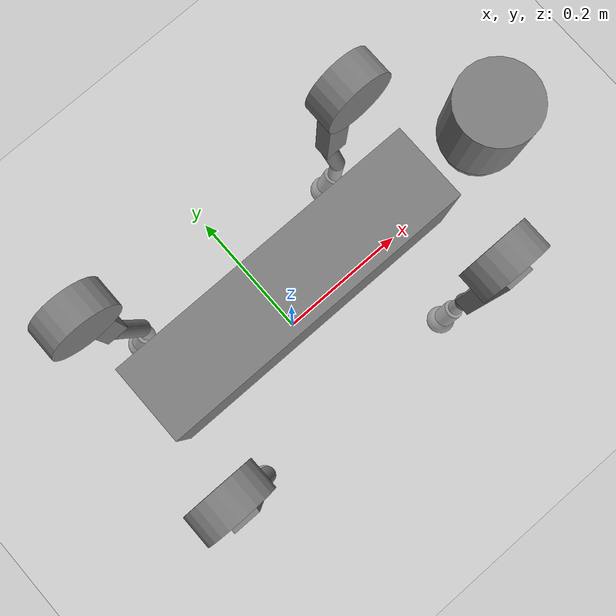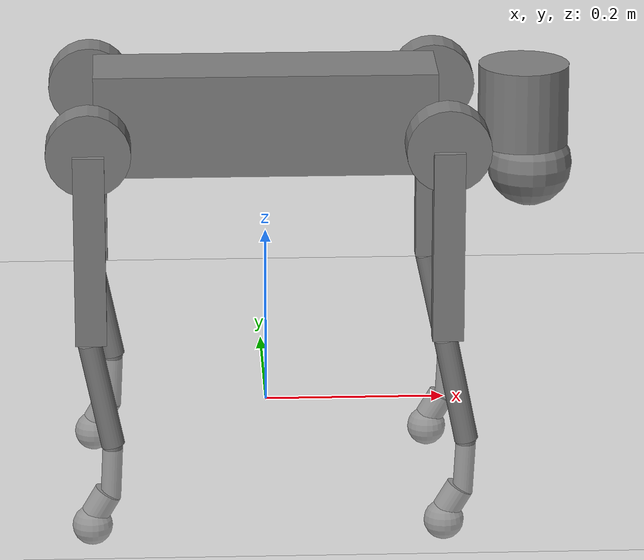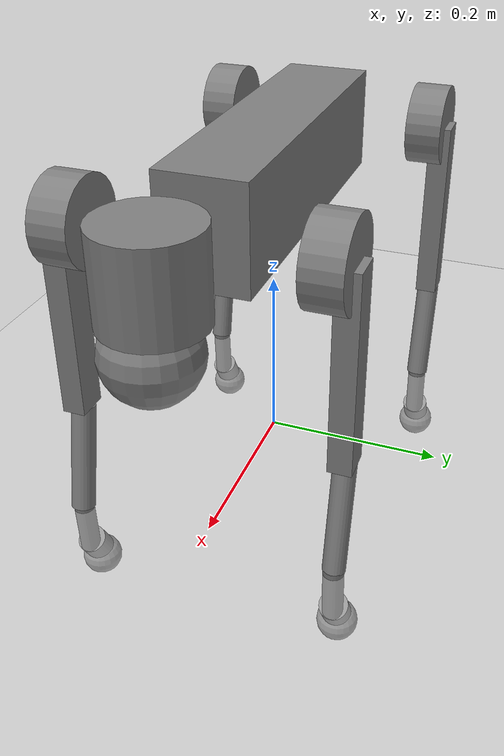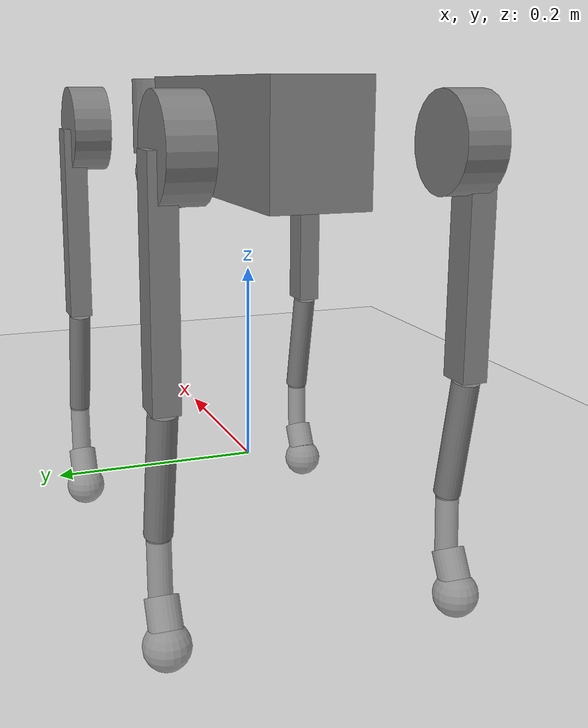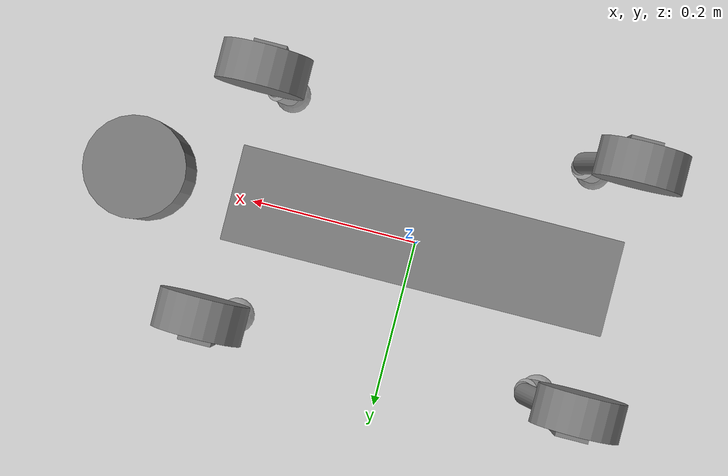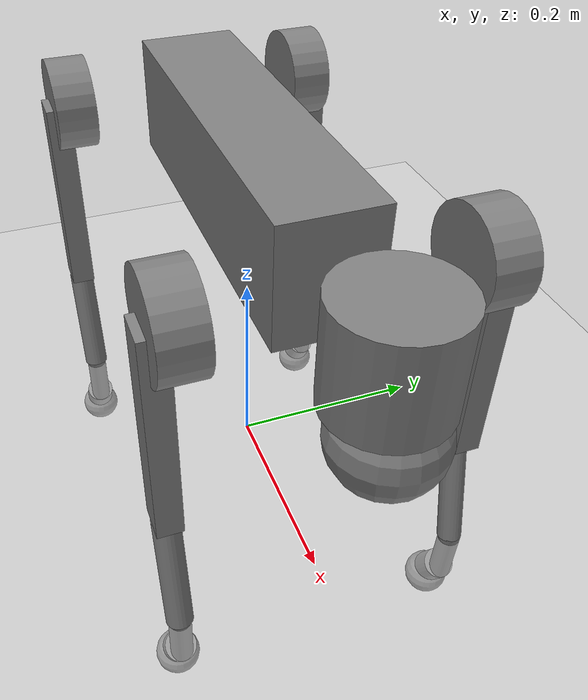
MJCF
<?xml version='1.0' encoding='utf-8'?>
<mujoco model="go2_description">
  <compiler angle="radian" />
  <option timestep="0.005000" gravity="0 0 -9.81" />
  <worldbody>
    <geom name="floor" type="plane" size="0 0 1" pos="0 0 0" rgba="0.9 0.9 0.9 1" friction="1.0 0.02 0.01" />
    <body name="base" pos="0.0 0.0 0.335">
      <freejoint name="base_freejoint" />
      <inertial pos="0.021112 0 -0.005366" mass="6.921" fullinertia="0.02448 0.098077 0.107 0.00012166 0.0014849 -3.12E-05" />
      <geom size="0.1881 0.04675 0.057" type="box" name="base_geom_1" contype="0" conaffinity="0" />
      <geom size="0.05 0.045" pos="0.285 0 0.01" type="cylinder" name="base_geom_2" contype="0" conaffinity="0" />
      <geom size="0.047" pos="0.293 0 -0.06" name="base_geom_3" contype="0" conaffinity="0" />
      <body name="FL_hip" pos="0.1934 0.0465 0">
        <inertial pos="-0.0047734 0.00169748 -9.28162e-05" quat="0.497642 0.500031 0.504424 0.497873" mass="0.767" diaginertia="0.000998153 0.000658288 0.000539972" />
        <joint name="FL_hip_joint" pos="0 0 0" axis="1 0 0" range="-1.0472 1.0472" actuatorfrcrange="-23.7 23.7" armature="0.004026312" damping="0.100000" />
        <geom size="0.046 0.02" pos="0 0.08 0" quat="0.707107 0.707107 0 0" type="cylinder" name="FL_hip_geom_1" contype="0" conaffinity="0" />
        <body name="FL_thigh" pos="0 0.0955 0">
          <inertial pos="-0.00347178 -0.0230207 -0.0303549" quat="0.79622 0.0840989 -0.0248035 0.59862" mass="1.241" diaginertia="0.00615153 0.00600351 0.00094178" />
          <joint name="FL_thigh_joint" pos="0 0 0" axis="0 1 0" range="-1.5708 3.4907" actuatorfrcrange="-23.7 23.7" armature="0.004026312" damping="0.100000" />
          <geom size="0.1065 0.01225 0.017" pos="0 0 -0.1065" quat="0.707107 0 0.707107 0" type="box" name="FL_thigh_geom_1" contype="0" conaffinity="0" />
          <body name="FL_calf" pos="0 0 -0.213">
            <inertial pos="0.00629595 -0.000622121 -0.141417" quat="0.710672 0.00154099 -0.00450087 0.703508" mass="0.241352" diaginertia="0.0014901 0.00146356 5.31397e-05" />
            <joint name="FL_calf_joint" pos="0 0 0" axis="0 1 0" range="-2.7227 -0.83776" actuatorfrcrange="-45.43 45.43" armature="0.009059202" damping="0.100000" />
            <geom size="0.012 0.06" pos="0.008 0 -0.06" quat="0.994493 0 -0.104807 0" type="cylinder" name="FL_calf_geom_1" contype="0" conaffinity="0" />
            <geom size="0.011 0.0325" pos="0.02 0 -0.148" quat="0.999688 0 0.0249974 0" type="cylinder" name="FL_calf_geom_2" contype="0" conaffinity="0" />
            <geom size="0.0155 0.015" pos="0.00801333 0 -0.18745" quat="0.965093 0 0.261909 0" type="cylinder" name="FL_calf_geom_3" contype="0" conaffinity="0" />
            <geom size="0.022" pos="-0.002 0 -0.213" name="FL_foot_collision" contype="1" conaffinity="1" condim="3" friction="1.0 0.02 0.01" />
          </body>
        </body>
      </body>
      <body name="FR_hip" pos="0.1934 -0.0465 0">
        <inertial pos="-0.0047734 -0.00169748 -9.28162e-05" quat="0.497873 0.504424 0.500031 0.497642" mass="0.767" diaginertia="0.000998153 0.000658288 0.000539972" />
        <joint name="FR_hip_joint" pos="0 0 0" axis="1 0 0" range="-1.0472 1.0472" actuatorfrcrange="-23.7 23.7" armature="0.004026312" damping="0.100000" />
        <geom size="0.046 0.02" pos="0 -0.08 0" quat="0.707107 0.707107 0 0" type="cylinder" name="FR_hip_geom_1" contype="0" conaffinity="0" />
        <body name="FR_thigh" pos="0 -0.0955 0">
          <inertial pos="-0.00347178 0.0230207 -0.0303549" quat="0.59862 -0.0248035 0.0840989 0.79622" mass="1.241" diaginertia="0.00615153 0.00600351 0.00094178" />
          <joint name="FR_thigh_joint" pos="0 0 0" axis="0 1 0" range="-1.5708 3.4907" actuatorfrcrange="-23.7 23.7" armature="0.004026312" damping="0.100000" />
          <geom size="0.1065 0.01225 0.017" pos="0 0 -0.1065" quat="0.707107 0 0.707107 0" type="box" name="FR_thigh_geom_1" contype="0" conaffinity="0" />
          <body name="FR_calf" pos="0 0 -0.213">
            <inertial pos="0.00629595 0.000622121 -0.141417" quat="0.703508 -0.00450087 0.00154099 0.710672" mass="0.241352" diaginertia="0.0014901 0.00146356 5.31397e-05" />
            <joint name="FR_calf_joint" pos="0 0 0" axis="0 1 0" range="-2.7227 -0.83776" actuatorfrcrange="-45.43 45.43" armature="0.009059202" damping="0.100000" />
            <geom size="0.013 0.06" pos="0.01 0 -0.06" quat="0.995004 0 -0.0998334 0" type="cylinder" name="FR_calf_geom_1" contype="0" conaffinity="0" />
            <geom size="0.011 0.0325" pos="0.02 0 -0.148" quat="0.999688 0 0.0249974 0" type="cylinder" name="FR_calf_geom_2" contype="0" conaffinity="0" />
            <geom size="0.0155 0.015" pos="0.00801333 0 -0.18745" quat="0.965093 0 0.261909 0" type="cylinder" name="FR_calf_geom_3" contype="0" conaffinity="0" />
            <geom size="0.022" pos="-0.002 0 -0.213" name="FR_foot_collision" contype="1" conaffinity="1" condim="3" friction="1.0 0.02 0.01" />
          </body>
        </body>
      </body>
      <body name="RL_hip" pos="-0.1934 0.0465 0">
        <inertial pos="0.0047734 0.00169748 -9.28162e-05" quat="0.504424 0.497873 0.497642 0.500031" mass="0.767" diaginertia="0.000998153 0.000658288 0.000539972" />
        <joint name="RL_hip_joint" pos="0 0 0" axis="1 0 0" range="-1.0472 1.0472" actuatorfrcrange="-23.7 23.7" armature="0.004026312" damping="0.100000" />
        <geom size="0.046 0.02" pos="0 0.08 0" quat="0.707107 0.707107 0 0" type="cylinder" name="RL_hip_geom_1" contype="0" conaffinity="0" />
        <body name="RL_thigh" pos="0 0.0955 0">
          <inertial pos="-0.00347178 -0.0230207 -0.0303549" quat="0.79622 0.0840989 -0.0248035 0.59862" mass="1.241" diaginertia="0.00615153 0.00600351 0.00094178" />
          <joint name="RL_thigh_joint" pos="0 0 0" axis="0 1 0" range="-0.5236 4.5379" actuatorfrcrange="-23.7 23.7" armature="0.004026312" damping="0.100000" />
          <geom size="0.1065 0.01225 0.017" pos="0 0 -0.1065" quat="0.707107 0 0.707107 0" type="box" name="RL_thigh_geom_1" contype="0" conaffinity="0" />
          <body name="RL_calf" pos="0 0 -0.213">
            <inertial pos="0.00629595 -0.000622121 -0.141417" quat="0.710672 0.00154099 -0.00450087 0.703508" mass="0.241352" diaginertia="0.0014901 0.00146356 5.31397e-05" />
            <joint name="RL_calf_joint" pos="0 0 0" axis="0 1 0" range="-2.7227 -0.83776" actuatorfrcrange="-45.43 45.43" armature="0.009059202" damping="0.100000" />
            <geom size="0.013 0.06" pos="0.01 0 -0.06" quat="0.995004 0 -0.0998334 0" type="cylinder" name="RL_calf_geom_1" contype="0" conaffinity="0" />
            <geom size="0.011 0.0325" pos="0.02 0 -0.148" quat="0.999688 0 0.0249974 0" type="cylinder" name="RL_calf_geom_2" contype="0" conaffinity="0" />
            <geom size="0.0155 0.015" pos="0.00801333 0 -0.18745" quat="0.965093 0 0.261909 0" type="cylinder" name="RL_calf_geom_3" contype="0" conaffinity="0" />
            <geom size="0.022" pos="-0.002 0 -0.213" name="RL_foot_collision" contype="1" conaffinity="1" condim="3" friction="1.0 0.02 0.01" />
          </body>
        </body>
      </body>
      <body name="RR_hip" pos="-0.1934 -0.0465 0">
        <inertial pos="0.0047734 -0.00169748 -9.28162e-05" quat="0.500031 0.497642 0.497873 0.504424" mass="0.767" diaginertia="0.000998153 0.000658288 0.000539972" />
        <joint name="RR_hip_joint" pos="0 0 0" axis="1 0 0" range="-1.0472 1.0472" actuatorfrcrange="-23.7 23.7" armature="0.004026312" damping="0.100000" />
        <geom size="0.046 0.02" pos="0 -0.08 0" quat="0.707107 0.707107 0 0" type="cylinder" name="RR_hip_geom_1" contype="0" conaffinity="0" />
        <body name="RR_thigh" pos="0 -0.0955 0">
          <inertial pos="-0.00347178 0.0230207 -0.0303549" quat="0.59862 -0.0248035 0.0840989 0.79622" mass="1.241" diaginertia="0.00615153 0.00600351 0.00094178" />
          <joint name="RR_thigh_joint" pos="0 0 0" axis="0 1 0" range="-0.5236 4.5379" actuatorfrcrange="-23.7 23.7" armature="0.004026312" damping="0.100000" />
          <geom size="0.1065 0.01225 0.017" pos="0 0 -0.1065" quat="0.707107 0 0.707107 0" type="box" name="RR_thigh_geom_1" contype="0" conaffinity="0" />
          <body name="RR_calf" pos="0 0 -0.213">
            <inertial pos="0.00629595 0.000622121 -0.141417" quat="0.703508 -0.00450087 0.00154099 0.710672" mass="0.241352" diaginertia="0.0014901 0.00146356 5.31397e-05" />
            <joint name="RR_calf_joint" pos="0 0 0" axis="0 1 0" range="-2.7227 -0.83776" actuatorfrcrange="-45.43 45.43" armature="0.009059202" damping="0.100000" />
            <geom size="0.013 0.06" pos="0.01 0 -0.06" quat="0.995004 0 -0.0998334 0" type="cylinder" name="RR_calf_geom_1" contype="0" conaffinity="0" />
            <geom size="0.011 0.0325" pos="0.02 0 -0.148" quat="0.999688 0 0.0249974 0" type="cylinder" name="RR_calf_geom_2" contype="0" conaffinity="0" />
            <geom size="0.0155 0.015" pos="0.00801333 0 -0.18745" quat="0.965093 0 0.261909 0" type="cylinder" name="RR_calf_geom_3" contype="0" conaffinity="0" />
            <geom size="0.022" pos="-0.002 0 -0.213" name="RR_foot_collision" contype="1" conaffinity="1" condim="3" friction="1.0 0.02 0.01" />
          </body>
        </body>
      </body>
    </body>
  </worldbody>
  <actuator>
    <position name="FL_hip_joint_motor" joint="FL_hip_joint" kp="25.000000" kv="0.500000" ctrllimited="false" forcelimited="true" forcerange="-23.500000 23.500000" />
    <position name="FL_thigh_joint_motor" joint="FL_thigh_joint" kp="25.000000" kv="0.500000" ctrllimited="false" forcelimited="true" forcerange="-23.500000 23.500000" />
    <position name="FL_calf_joint_motor" joint="FL_calf_joint" kp="25.000000" kv="0.500000" ctrllimited="false" forcelimited="true" forcerange="-23.500000 23.500000" />
    <position name="FR_hip_joint_motor" joint="FR_hip_joint" kp="25.000000" kv="0.500000" ctrllimited="false" forcelimited="true" forcerange="-23.500000 23.500000" />
    <position name="FR_thigh_joint_motor" joint="FR_thigh_joint" kp="25.000000" kv="0.500000" ctrllimited="false" forcelimited="true" forcerange="-23.500000 23.500000" />
    <position name="FR_calf_joint_motor" joint="FR_calf_joint" kp="25.000000" kv="0.500000" ctrllimited="false" forcelimited="true" forcerange="-23.500000 23.500000" />
    <position name="RL_hip_joint_motor" joint="RL_hip_joint" kp="25.000000" kv="0.500000" ctrllimited="false" forcelimited="true" forcerange="-23.500000 23.500000" />
    <position name="RL_thigh_joint_motor" joint="RL_thigh_joint" kp="25.000000" kv="0.500000" ctrllimited="false" forcelimited="true" forcerange="-23.500000 23.500000" />
    <position name="RL_calf_joint_motor" joint="RL_calf_joint" kp="25.000000" kv="0.500000" ctrllimited="false" forcelimited="true" forcerange="-23.500000 23.500000" />
    <position name="RR_hip_joint_motor" joint="RR_hip_joint" kp="25.000000" kv="0.500000" ctrllimited="false" forcelimited="true" forcerange="-23.500000 23.500000" />
    <position name="RR_thigh_joint_motor" joint="RR_thigh_joint" kp="25.000000" kv="0.500000" ctrllimited="false" forcelimited="true" forcerange="-23.500000 23.500000" />
    <position name="RR_calf_joint_motor" joint="RR_calf_joint" kp="25.000000" kv="0.500000" ctrllimited="false" forcelimited="true" forcerange="-23.500000 23.500000" />
  </actuator>
</mujoco>
